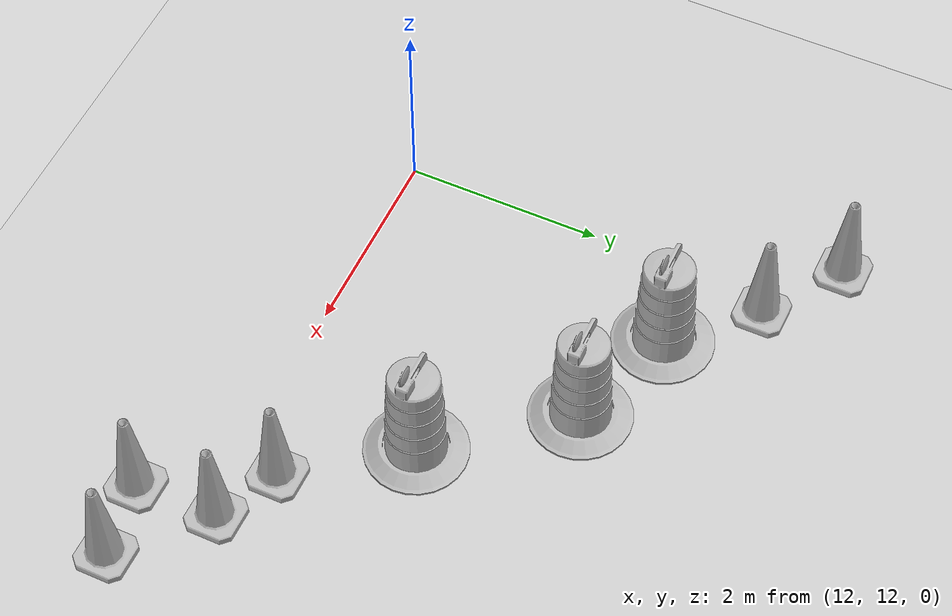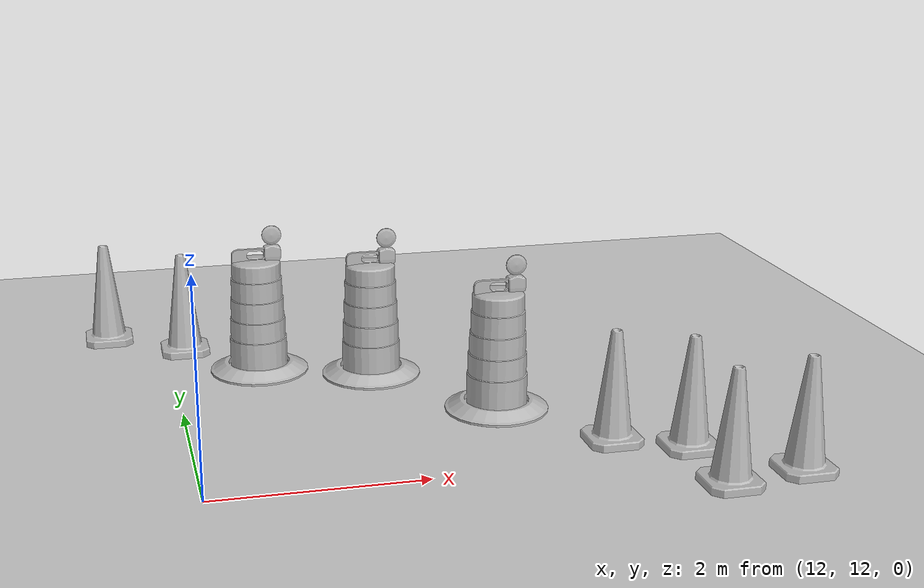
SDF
<sdf version="1.7">
 <world name="default">
  <light name="sun" type="directional">
   <pose>0 0 10 0 -0 0</pose>
   <diffuse>0.8 0.8 0.8 1</diffuse>
   <specular>0.2 0.2 0.2 1</specular>
   <attenuation>
    <range>1000</range>
    <constant>0.9</constant>
    <linear>0.01</linear>
    <quadratic>0.001</quadratic>
   </attenuation>
   <direction>-0.5 0.1 -0.9</direction>
   <spot><inner_angle>0</inner_angle><outer_angle>0</outer_angle><falloff>0</falloff></spot>
  </light>
  <model name="ground_plane">
   <static>1</static>
   <link name="link">
    <collision name="collision">
     <geometry><plane><normal>0 0 1</normal><size>100 100</size></plane></geometry>
     <surface>
      <contact><collide_bitmask>65535</collide_bitmask></contact>
      <friction><ode><mu>100</mu><mu2>50</mu2></ode></friction>
     </surface>
    </collision>
    <visual name="visual">
     <cast_shadows>0</cast_shadows>
     <geometry><plane><normal>0 0 1</normal><size>100 100</size></plane></geometry>
     <material>
      <script><uri>file://media/materials/scripts/gazebo.material</uri><name>Gazebo/Grey</name></script>
     </material>
    </visual>
   </link>
  </model>
  <gravity>0 0 -9.8</gravity>
  <magnetic_field>6e-06 2.3e-05 -4.2e-05</magnetic_field>
  <atmosphere type="adiabatic"/>
  <physics type="ode">
   <max_step_size>0.001</max_step_size>
   <real_time_factor>1</real_time_factor>
   <real_time_update_rate>1000</real_time_update_rate>
  </physics>
  <scene><ambient>0.4 0.4 0.4 1</ambient><background>0.7 0.7 0.7 1</background><shadows>1</shadows></scene>
  <audio><device>default</device></audio>
  <spherical_coordinates>
   <surface_model>EARTH_WGS84</surface_model>
   <latitude_deg>0</latitude_deg>
   <longitude_deg>0</longitude_deg>
   <elevation>0</elevation>
   <heading_deg>0</heading_deg>
  </spherical_coordinates>
  <model name="Construction Cone">
   <link name="link">
    <collision name="collision">
     <geometry>
      <mesh><scale>10 10 10</scale><uri>model://construction_cone/meshes/construction_cone.dae</uri></mesh>
     </geometry>
    </collision>
    <visual name="visual">
     <geometry>
      <mesh><scale>10 10 10</scale><uri>model://construction_cone/meshes/construction_cone.dae</uri></mesh>
     </geometry>
    </visual>
    <inertial>
     <inertia><ixx>1</ixx><ixy>0</ixy><ixz>0</ixz><iyy>1</iyy><iyz>0</iyz><izz>1</izz></inertia>
     <mass>1</mass>
    </inertial>
   </link>
   <pose>17.2343 11.4112 -0 0 -0 0</pose>
  </model>
  <model name="Construction Barrel">
   <link name="link">
    <inertial>
     <pose>0 0 0.4 0 -0 0</pose>
     <mass>500</mass>
     <inertia><ixx>51.2096</ixx><iyy>51.2096</iyy><izz>25</izz><ixy>0</ixy><ixz>0</ixz><iyz>0</iyz></inertia>
    </inertial>
    <collision name="collision">
     <geometry><mesh><uri>model://construction_barrel/meshes/construction_barrel.dae</uri></mesh></geometry>
    </collision>
    <visual name="visual">
     <geometry><mesh><uri>model://construction_barrel/meshes/construction_barrel.dae</uri></mesh></geometry>
    </visual>
   </link>
   <pose>15.008 13.4795 -3e-06 -6e-06 -5e-06 -3.9e-05</pose>
  </model>
  <model name="Construction Cone_0">
   <link name="link">
    <collision name="collision">
     <geometry>
      <mesh><scale>10 10 10</scale><uri>model://construction_cone/meshes/construction_cone.dae</uri></mesh>
     </geometry>
    </collision>
    <visual name="visual">
     <geometry>
      <mesh><scale>10 10 10</scale><uri>model://construction_cone/meshes/construction_cone.dae</uri></mesh>
     </geometry>
    </visual>
    <inertial>
     <inertia><ixx>1</ixx><ixy>0</ixy><ixz>0</ixz><iyy>1</iyy><iyz>0</iyz><izz>1</izz></inertia>
     <mass>1</mass>
    </inertial>
   </link>
   <pose>11.3792 16.3996 -0 0 -1e-06 0</pose>
  </model>
  <model name="Construction Barrel_0">
   <link name="link">
    <inertial>
     <pose>0 0 0.4 0 -0 0</pose>
     <mass>500</mass>
     <inertia><ixx>51.2096</ixx><iyy>51.2096</iyy><izz>25</izz><ixy>0</ixy><ixz>0</ixz><iyz>0</iyz></inertia>
    </inertial>
    <collision name="collision">
     <geometry><mesh><uri>model://construction_barrel/meshes/construction_barrel.dae</uri></mesh></geometry>
    </collision>
    <visual name="visual">
     <geometry><mesh><uri>model://construction_barrel/meshes/construction_barrel.dae</uri></mesh></geometry>
    </visual>
   </link>
   <pose>14.008 14.7233 -1e-06 5e-06 -3e-06 -3.7e-05</pose>
  </model>
  <model name="Construction Barrel_1">
   <link name="link">
    <inertial>
     <pose>0 0 0.4 0 -0 0</pose>
     <mass>500</mass>
     <inertia><ixx>51.2096</ixx><iyy>51.2096</iyy><izz>25</izz><ixy>0</ixy><ixz>0</ixz><iyz>0</iyz></inertia>
    </inertial>
    <collision name="collision">
     <geometry><mesh><uri>model://construction_barrel/meshes/construction_barrel.dae</uri></mesh></geometry>
    </collision>
    <visual name="visual">
     <geometry><mesh><uri>model://construction_barrel/meshes/construction_barrel.dae</uri></mesh></geometry>
    </visual>
   </link>
   <pose>12.886 15.102 -1e-06 -3e-06 -1e-06 -3.5e-05</pose>
  </model>
  <model name="Construction Cone_1">
   <link name="link">
    <collision name="collision">
     <geometry>
      <mesh><scale>10 10 10</scale><uri>model://construction_cone/meshes/construction_cone.dae</uri></mesh>
     </geometry>
    </collision>
    <visual name="visual">
     <geometry>
      <mesh><scale>10 10 10</scale><uri>model://construction_cone/meshes/construction_cone.dae</uri></mesh>
     </geometry>
    </visual>
    <inertial>
     <inertia><ixx>1</ixx><ixy>0</ixy><ixz>0</ixz><iyy>1</iyy><iyz>0</iyz><izz>1</izz></inertia>
     <mass>1</mass>
    </inertial>
   </link>
   <pose>16.4513 12.1275 -0 0 -0 0</pose>
  </model>
  <model name="Construction Cone_2">
   <link name="link">
    <collision name="collision">
     <geometry>
      <mesh><scale>10 10 10</scale><uri>model://construction_cone/meshes/construction_cone.dae</uri></mesh>
     </geometry>
    </collision>
    <visual name="visual">
     <geometry>
      <mesh><scale>10 10 10</scale><uri>model://construction_cone/meshes/construction_cone.dae</uri></mesh>
     </geometry>
    </visual>
    <inertial>
     <inertia><ixx>1</ixx><ixy>0</ixy><ixz>0</ixz><iyy>1</iyy><iyz>0</iyz><izz>1</izz></inertia>
     <mass>1</mass>
    </inertial>
   </link>
   <pose>15.8189 12.434 -0 0 -1e-06 0</pose>
  </model>
  <model name="Construction Cone_4">
   <link name="link">
    <collision name="collision">
     <geometry>
      <mesh><scale>10 10 10</scale><uri>model://construction_cone/meshes/construction_cone.dae</uri></mesh>
     </geometry>
    </collision>
    <visual name="visual">
     <geometry>
      <mesh><scale>10 10 10</scale><uri>model://construction_cone/meshes/construction_cone.dae</uri></mesh>
     </geometry>
    </visual>
    <inertial>
     <inertia><ixx>1</ixx><ixy>0</ixy><ixz>0</ixz><iyy>1</iyy><iyz>0</iyz><izz>1</izz></inertia>
     <mass>1</mass>
    </inertial>
   </link>
   <pose>16.4781 11.2953 -0 0 -0 0</pose>
  </model>
  <model name="Construction Cone_5">
   <link name="link">
    <collision name="collision">
     <geometry>
      <mesh><scale>10 10 10</scale><uri>model://construction_cone/meshes/construction_cone.dae</uri></mesh>
     </geometry>
    </collision>
    <visual name="visual">
     <geometry>
      <mesh><scale>10 10 10</scale><uri>model://construction_cone/meshes/construction_cone.dae</uri></mesh>
     </geometry>
    </visual>
    <inertial>
     <inertia><ixx>1</ixx><ixy>0</ixy><ixz>0</ixz><iyy>1</iyy><iyz>0</iyz><izz>1</izz></inertia>
     <mass>1</mass>
    </inertial>
   </link>
   <pose>12.171 15.846 -0 0 -0 0</pose>
  </model>
 </world>
</sdf>
